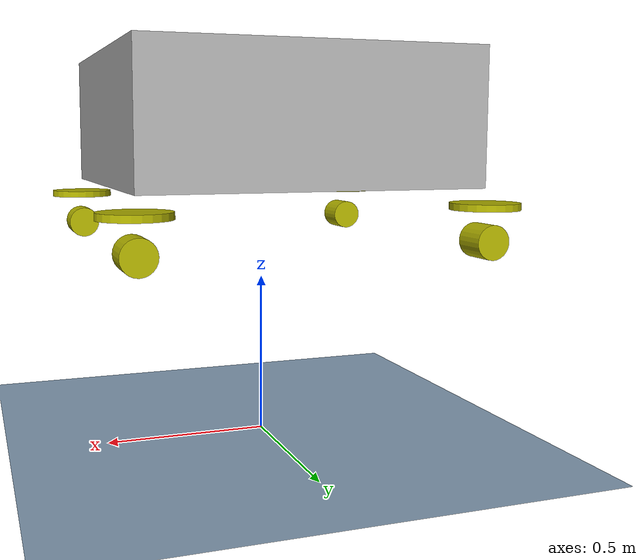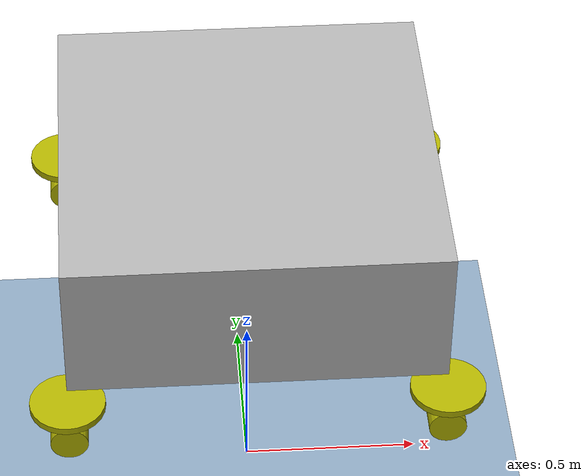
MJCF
<mujoco model='paddlecart'>
  <asset>
    <texture type="skybox" builtin="gradient" rgb1=".3 .5 .7" rgb2="0 0 0" width="32" height="512"/>
    <texture name="grid" type="2d" builtin="checker" width="512" height="512" rgb1=".4 .5 .6" rgb2=".7 .8 .9"/>
    <material name="grid" texture="grid" texrepeat="2 2" texuniform="true" reflectance=".2"/>
  </asset>

  <option gravity="0 0 -9"/>

  <worldbody>
   <light name="light1" pos="0 0 10" dir="0 0 -1" diffuse=".8 .8 .8" specular=".2 .2 .2" ambient=".6 .5 .5"/>
    <camera name='fixed' pos='0 -2.5 0' quat='0.707 0.707 0 0'/>
    <geom name="floor" type="plane" size="3 3 .01" pos="-0.025 -0.295  0" material="grid"/>

    <body name="body" pos="0 0 1">
      <freejoint name="body_joint"/>
      <geom name="body_geom" type="box" size=".5 .5 .2" rgba="0.7 0.7 0.7 1"/>
      <body name= "steer_FL" pos="0.5 0.5 -0.25">
        <joint name="steer_FL_joint" pos="0 0 0" axis="0 0 1"/>
        <geom name="steer_FL_geom" type="cylinder" size=".1 .01" rgba="0.7 0.7 0 1"/>
        <body name="drive_FL" pos="0 0 -0.1">
          <joint name="drive_FL_joint" pos="0 0 0" axis="0 1 0" />
          <geom name="dribe_FL_geom" type="cylinder" size=".05 .05" rgba="0.7 0.7 0 1" xyaxes="1 0 0 0 0 1"/>
        </body>
      </body>
      <body name= "steer_FR" pos="0.5 -0.5 -0.25">
        <joint name="steer_FR_joint" pos="0 0 0" axis="0 0 1"/>
        <geom name="steer_FR_geom" type="cylinder" size=".1 .01" rgba="0.7 0.7 0 1"/>
        <body name="drive_FR" pos="0 0 -0.1">
          <joint name="drive_FR_joint" pos="0 0 0" axis="0 1 0" />
          <geom name="dribe_FR_geom" type="cylinder" size=".05 .05" rgba="0.7 0.7 0 1" xyaxes="1 0 0 0 0 1"/>
        </body>
      </body>
      <body name= "steer_BL" pos="-0.5 0.5 -0.25">
        <joint name="steer_BL_joint" pos="0 0 0" axis="0 0 1"/>
        <geom name="steer_BL_geom" type="cylinder" size=".1 .01" rgba="0.7 0.7 0 1"/>
        <body name="drive_BL" pos="0 0 -0.1">
          <joint name="drive_BL_joint" pos="0 0 0" axis="0 1 0"/>
          <geom name="dribe_BL_geom" type="cylinder" size=".05 .05" rgba="0.7 0.7 0 1" xyaxes="1 0 0 0 0 1"/>
        </body>
      </body>
      <body name= "steer_BR" pos="-0.5 -0.5 -0.25">
        <joint name="steer_BR_joint" pos="0 0 0" axis="0 0 1"/>
        <geom name="steer_BR_geom" type="cylinder" size=".1 .01" rgba="0.7 0.7 0 1"/>
        <body name="drive_BR" pos="0 0 -0.1">
          <joint name="drive_BR_joint" pos="0 0 0" axis="0 1 0" />
          <geom name="drive_BR_geom" type="cylinder" size=".05 .05" rgba="0.7 0.7 0 1" xyaxes="1 0 0 0 0 1"/>
        </body>
      </body>
    </body>

  </worldbody>
      <actuator>
      <motor name="motor_FL_drive" joint="drive_FL_joint"/>
      <motor name="motor_FR_drive" joint="drive_FR_joint"/>
      <motor name="motor_BL_drive" joint="drive_BL_joint"/>
      <motor name="motor_BR_drive" joint="drive_BR_joint"/>
      <motor name="motor_FL_steer" joint="steer_FL_joint"/>
      <motor name="motor_FR_steer" joint="steer_FR_joint"/>
      <motor name="motor_BL_steer" joint="steer_BL_joint"/>
      <motor name="motor_BR_steer" joint="steer_BR_joint"/>

    </actuator>
</mujoco>
